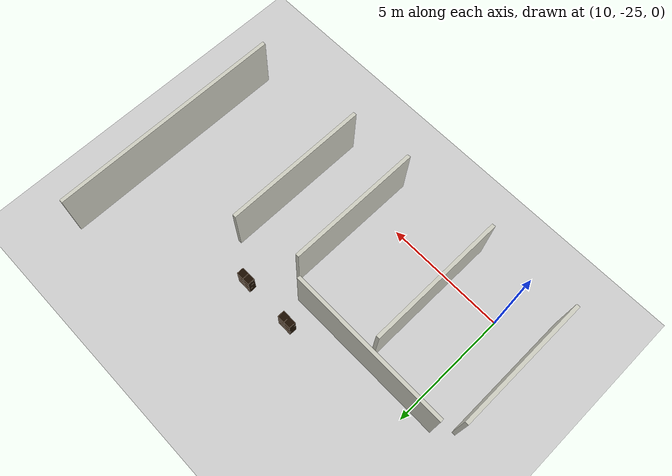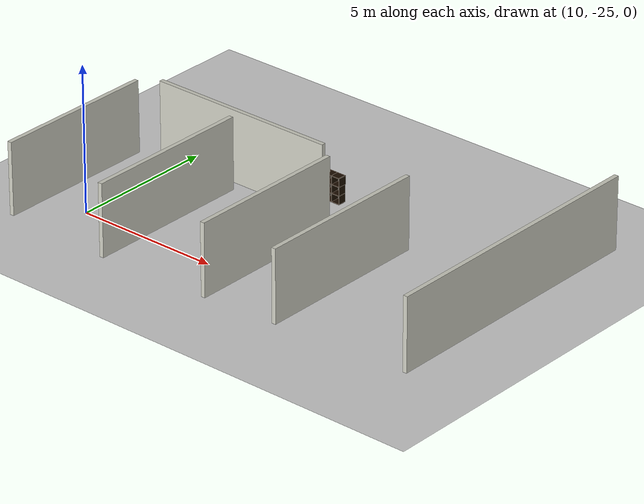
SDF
<sdf version="1.7">
 <world name="default">
  <model name="ground_plane">
   <static>1</static>
   <link name="link">
    <collision name="collision">
     <geometry><plane><normal>0 0 1</normal><size>100 100</size></plane></geometry>
     <surface><friction><ode><mu>100</mu><mu2>50</mu2></ode></friction></surface>
    </collision>
    <visual name="visual">
     <cast_shadows>0</cast_shadows>
     <geometry><plane><normal>0 0 1</normal><size>100 100</size></plane></geometry>
     <material>
      <ambient>1 1 1 1</ambient>
      <diffuse>0.8 0.8 0.8 1</diffuse>
      <specular>0.01 0.01 0.01 1</specular>
     </material>
    </visual>
   </link>
  </model>
  <model name="floorPlan">
   <pose>6.7155 -5.3556 0 0 -0 0</pose>
   <link name="Wall_123">
    <collision name="Wall_123_Collision">
     <geometry><box><size>9.79 0.15 2.5</size></box></geometry>
     <pose>0 0 1.25 0 -0 0</pose>
    </collision>
    <visual name="Wall_123_Visual">
     <pose>0 0 1.25 0 -0 0</pose>
     <geometry><box><size>9.79 0.15 2.5</size></box></geometry>
     <material>
      <script><uri>file://media/materials/scripts/gazebo.material</uri><name>Gazebo/PaintedWall</name></script>
      <ambient>1 1 1 1</ambient>
     </material>
     <meta><layer>0</layer></meta>
    </visual>
    <pose>16.8339 -15.8579 0 0 0 -1.5708</pose>
   </link>
   <link name="Wall_125">
    <collision name="Wall_125_Collision">
     <geometry><box><size>6.04 0.15 2.5</size></box></geometry>
     <pose>0 0 1.25 0 -0 0</pose>
    </collision>
    <visual name="Wall_125_Visual">
     <pose>0 0 1.25 0 -0 0</pose>
     <geometry><box><size>6.04 0.15 2.5</size></box></geometry>
     <material>
      <script><uri>file://media/materials/scripts/gazebo.material</uri><name>Gazebo/PaintedWall</name></script>
      <ambient>1 1 1 1</ambient>
     </material>
     <meta><layer>0</layer></meta>
    </visual>
    <pose>12.1458 -18.0541 0 0 0 -1.5708</pose>
   </link>
   <link name="Wall_229">
    <collision name="Wall_229_Collision">
     <geometry><box><size>5.62 0.15 2.5</size></box></geometry>
     <pose>0 0 1.25 0 -0 0</pose>
    </collision>
    <visual name="Wall_229_Visual">
     <pose>0 0 1.25 0 -0 0</pose>
     <geometry><box><size>5.62 0.15 2.5</size></box></geometry>
     <material>
      <script><uri>file://media/materials/scripts/gazebo.material</uri><name>Gazebo/PaintedWall</name></script>
      <ambient>1 1 1 1</ambient>
     </material>
     <meta><layer>0</layer></meta>
    </visual>
    <pose>1.67781 -18.4351 0 0 0 -1.5708</pose>
   </link>
   <link name="Wall_231">
    <collision name="Wall_231_Collision">
     <geometry><box><size>6.66 0.15 2.5</size></box></geometry>
     <pose>0 0 1.25 0 -0 0</pose>
    </collision>
    <visual name="Wall_231_Visual">
     <pose>0 0 1.25 0 -0 0</pose>
     <geometry><box><size>6.66 0.15 2.5</size></box></geometry>
     <material>
      <script><uri>file://media/materials/scripts/gazebo.material</uri><name>Gazebo/PaintedWall</name></script>
      <ambient>1 1 1 1</ambient>
     </material>
     <meta><layer>0</layer></meta>
    </visual>
    <pose>5.60281 -15.1351 0 0 -0 0</pose>
   </link>
   <link name="Wall_232">
    <collision name="Wall_232_Collision">
     <geometry><box><size>5.62 0.15 2.5</size></box></geometry>
     <pose>0 0 1.25 0 -0 0</pose>
    </collision>
    <visual name="Wall_232_Visual">
     <pose>0 0 1.25 0 -0 0</pose>
     <geometry><box><size>5.62 0.15 2.5</size></box></geometry>
     <material>
      <script><uri>file://media/materials/scripts/gazebo.material</uri><name>Gazebo/PaintedWall</name></script>
      <ambient>1 1 1 1</ambient>
     </material>
     <meta><layer>0</layer></meta>
    </visual>
    <pose>9.52781 -18.4351 0 0 0 -1.5708</pose>
   </link>
   <link name="Wall_265">
    <collision name="Wall_265_Collision">
     <geometry><box><size>5.83 0.15 2.5</size></box></geometry>
     <pose>0 0 1.25 0 -0 0</pose>
    </collision>
    <visual name="Wall_265_Visual">
     <pose>0 0 1.25 0 -0 0</pose>
     <geometry><box><size>5.83 0.15 2.5</size></box></geometry>
     <material>
      <script><uri>file://media/materials/scripts/gazebo.material</uri><name>Gazebo/PaintedWall</name></script>
      <ambient>1 1 1 1</ambient>
     </material>
     <meta><layer>0</layer></meta>
    </visual>
    <pose>5.58226 -18.4924 0 0 0 -1.5708</pose>
   </link>
   <static>1</static>
  </model>
  <model name="6_Cube_StorageE_clone_2">
   <link name="Wall_0">
    <pose>0 0 0.01 0 -0 0</pose>
    <inertial>
     <mass>1.6201</mass>
     <inertia><ixx>0.0119</ixx><iyy>0.0631</iyy><izz>0.0513</izz><ixy>0</ixy><ixz>0</ixz><iyz>0</iyz></inertia>
    </inertial>
    <collision name="Wall_0_Collision"><geometry><box><size>0.616 0.296 0.02</size></box></geometry></collision>
    <visual name="Wall_0_Visual">
     <geometry><box><size>0.616 0.296 0.02</size></box></geometry>
     <material>
      <script><uri>file://media/materials/scripts/gazebo.material</uri><name>Gazebo/Grey</name></script>
      <ambient>0.105882 0.0509804 0 1</ambient>
     </material>
    </visual>
   </link>
   <joint name="0_2" type="fixed">
    <pose>-0.308 0 0 0 -0 0</pose>
    <parent>Wall_2</parent>
    <child>Wall_0</child>
    <axis><xyz>1 0 0</xyz><limit><lower>-1e+16</lower><upper>1e+16</upper></limit></axis>
   </joint>
   <joint name="0_12" type="fixed">
    <parent>Wall_12</parent>
    <child>Wall_0</child>
    <axis><xyz>0 0 1</xyz><limit><lower>-1e+16</lower><upper>1e+16</upper></limit></axis>
   </joint>
   <joint name="0_4" type="fixed">
    <pose>0.308 0 0 0 -0 0</pose>
    <parent>Wall_4</parent>
    <child>Wall_0</child>
    <axis><xyz>1 0 0</xyz><limit><lower>-1e+16</lower><upper>1e+16</upper></limit></axis>
   </joint>
   <link name="Wall_10">
    <pose>0 0 0.61 0 -0 0</pose>
    <inertial>
     <mass>1.6201</mass>
     <inertia><ixx>0.0119</ixx><iyy>0.0631</iyy><izz>0.0513</izz><ixy>0</ixy><ixz>0</ixz><iyz>0</iyz></inertia>
    </inertial>
    <collision name="Wall_10_Collision"><geometry><box><size>0.616 0.296 0.02</size></box></geometry></collision>
    <visual name="Wall_10_Visual">
     <geometry><box><size>0.616 0.296 0.02</size></box></geometry>
     <material>
      <script><uri>file://media/materials/scripts/gazebo.material</uri><name>Gazebo/Grey</name></script>
      <ambient>0.105882 0.0509804 0 1</ambient>
     </material>
    </visual>
   </link>
   <joint name="10_2" type="fixed">
    <pose>-0.308 0 0 0 -0 0</pose>
    <parent>Wall_2</parent>
    <child>Wall_10</child>
    <axis><xyz>1 0 0</xyz><limit><lower>-1e+16</lower><upper>1e+16</upper></limit></axis>
   </joint>
   <joint name="10_12" type="fixed">
    <parent>Wall_12</parent>
    <child>Wall_10</child>
    <axis><xyz>0 0 1</xyz><limit><lower>-1e+16</lower><upper>1e+16</upper></limit></axis>
   </joint>
   <joint name="10_4" type="fixed">
    <pose>0.308 0 0 0 -0 0</pose>
    <parent>Wall_4</parent>
    <child>Wall_10</child>
    <axis><xyz>1 0 0</xyz><limit><lower>-1e+16</lower><upper>1e+16</upper></limit></axis>
   </joint>
   <link name="Wall_12">
    <pose>0 0 0.4575 0 -0 0</pose>
    <inertial>
     <mass>2.4065</mass>
     <inertia><ixx>0.0177</ixx><iyy>0.1855</iyy><izz>0.168</izz><ixy>0</ixy><ixz>0</ixz><iyz>0</iyz></inertia>
    </inertial>
    <collision name="Wall_12_Collision"><geometry><box><size>0.02 0.296 0.915</size></box></geometry></collision>
    <visual name="Wall_12_Visual">
     <geometry><box><size>0.02 0.296 0.915</size></box></geometry>
     <material>
      <script><uri>file://media/materials/scripts/gazebo.material</uri><name>Gazebo/Grey</name></script>
      <ambient>0.105882 0.0509804 0 1</ambient>
     </material>
    </visual>
   </link>
   <link name="Wall_2">
    <pose>-0.298 0 0.4575 0 -0 0</pose>
    <inertial>
     <mass>2.4065</mass>
     <inertia><ixx>0.0177</ixx><iyy>0.1855</iyy><izz>0.168</izz><ixy>0</ixy><ixz>0</ixz><iyz>0</iyz></inertia>
    </inertial>
    <collision name="Wall_2_Collision"><geometry><box><size>0.02 0.296 0.915</size></box></geometry></collision>
    <visual name="Wall_2_Visual">
     <geometry><box><size>0.02 0.296 0.915</size></box></geometry>
     <material>
      <script><uri>file://media/materials/scripts/gazebo.material</uri><name>Gazebo/Grey</name></script>
      <ambient>0.105882 0.0509804 0 1</ambient>
     </material>
    </visual>
   </link>
   <link name="Wall_4">
    <pose>0.298 0 0.4575 0 -0 0</pose>
    <inertial>
     <mass>2.4065</mass>
     <inertia><ixx>0.0177</ixx><iyy>0.1855</iyy><izz>0.168</izz><ixy>0</ixy><ixz>0</ixz><iyz>0</iyz></inertia>
    </inertial>
    <collision name="Wall_4_Collision"><geometry><box><size>0.02 0.296 0.915</size></box></geometry></collision>
    <visual name="Wall_4_Visual">
     <geometry><box><size>0.02 0.296 0.915</size></box></geometry>
     <material>
      <script><uri>file://media/materials/scripts/gazebo.material</uri><name>Gazebo/Grey</name></script>
      <ambient>0.105882 0.0509804 0 1</ambient>
     </material>
    </visual>
   </link>
   <link name="Wall_6">
    <pose>0 0 0.905 0 -0 0</pose>
    <inertial>
     <mass>1.6201</mass>
     <inertia><ixx>0.0119</ixx><iyy>0.0631</iyy><izz>0.0513</izz><ixy>0</ixy><ixz>0</ixz><iyz>0</iyz></inertia>
    </inertial>
    <collision name="Wall_6_Collision"><geometry><box><size>0.616 0.296 0.02</size></box></geometry></collision>
    <visual name="Wall_6_Visual">
     <geometry><box><size>0.616 0.296 0.02</size></box></geometry>
     <material>
      <script><uri>file://media/materials/scripts/gazebo.material</uri><name>Gazebo/Grey</name></script>
      <ambient>0.105882 0.0509804 0 1</ambient>
     </material>
    </visual>
   </link>
   <joint name="6_2" type="fixed">
    <pose>-0.308 0 0 0 -0 0</pose>
    <parent>Wall_2</parent>
    <child>Wall_6</child>
    <axis><xyz>2 0 0</xyz><limit><lower>-1e+16</lower><upper>1e+16</upper></limit></axis>
   </joint>
   <joint name="6_12" type="fixed">
    <parent>Wall_12</parent>
    <child>Wall_6</child>
    <axis><xyz>0 0 1</xyz><limit><lower>-1e+16</lower><upper>1e+16</upper></limit></axis>
   </joint>
   <joint name="6_4" type="fixed">
    <pose>0.308 0 0 0 -0 0</pose>
    <parent>Wall_4</parent>
    <child>Wall_6</child>
    <axis><xyz>1 0 0</xyz><limit><lower>-1e+16</lower><upper>1e+16</upper></limit></axis>
   </joint>
   <link name="Wall_8">
    <pose>0 0 0.305 0 -0 0</pose>
    <inertial>
     <mass>1.6201</mass>
     <inertia><ixx>0.0119</ixx><iyy>0.0631</iyy><izz>0.0513</izz><ixy>0</ixy><ixz>0</ixz><iyz>0</iyz></inertia>
    </inertial>
    <collision name="Wall_8_Collision"><geometry><box><size>0.616 0.296 0.02</size></box></geometry></collision>
    <visual name="Wall_8_Visual">
     <geometry><box><size>0.616 0.296 0.02</size></box></geometry>
     <material>
      <script><uri>file://media/materials/scripts/gazebo.material</uri><name>Gazebo/Grey</name></script>
      <ambient>0.105882 0.0509804 0 1</ambient>
     </material>
    </visual>
   </link>
   <joint name="8_2" type="fixed">
    <pose>-0.308 0 0 0 -0 0</pose>
    <parent>Wall_2</parent>
    <child>Wall_8</child>
    <axis><xyz>1 0 0</xyz><limit><lower>-1e+16</lower><upper>1e+16</upper></limit></axis>
   </joint>
   <joint name="8_12" type="fixed">
    <parent>Wall_12</parent>
    <child>Wall_8</child>
    <axis><xyz>0 0 1</xyz><limit><lower>-1e+16</lower><upper>1e+16</upper></limit></axis>
   </joint>
   <joint name="8_4" type="fixed">
    <pose>0.308 0 0 0 -0 0</pose>
    <parent>Wall_4</parent>
    <child>Wall_8</child>
    <axis><xyz>1 0 0</xyz><limit><lower>-1e+16</lower><upper>1e+16</upper></limit></axis>
   </joint>
   <static>1</static>
   <pose>15.1837 -19.4401 0 0 -0 0</pose>
  </model>
  <model name="6_Cube_StorageE_clone_3">
   <link name="Wall_0">
    <pose>0 0 0.01 0 -0 0</pose>
    <inertial>
     <mass>1.6201</mass>
     <inertia><ixx>0.0119</ixx><iyy>0.0631</iyy><izz>0.0513</izz><ixy>0</ixy><ixz>0</ixz><iyz>0</iyz></inertia>
    </inertial>
    <collision name="Wall_0_Collision"><geometry><box><size>0.616 0.296 0.02</size></box></geometry></collision>
    <visual name="Wall_0_Visual">
     <geometry><box><size>0.616 0.296 0.02</size></box></geometry>
     <material>
      <script><uri>file://media/materials/scripts/gazebo.material</uri><name>Gazebo/Grey</name></script>
      <ambient>0.105882 0.0509804 0 1</ambient>
     </material>
    </visual>
   </link>
   <joint name="0_2" type="fixed">
    <pose>-0.308 0 0 0 -0 0</pose>
    <parent>Wall_2</parent>
    <child>Wall_0</child>
    <axis><xyz>1 0 0</xyz><limit><lower>-1e+16</lower><upper>1e+16</upper></limit></axis>
   </joint>
   <joint name="0_12" type="fixed">
    <parent>Wall_12</parent>
    <child>Wall_0</child>
    <axis><xyz>0 0 1</xyz><limit><lower>-1e+16</lower><upper>1e+16</upper></limit></axis>
   </joint>
   <joint name="0_4" type="fixed">
    <pose>0.308 0 0 0 -0 0</pose>
    <parent>Wall_4</parent>
    <child>Wall_0</child>
    <axis><xyz>1 0 0</xyz><limit><lower>-1e+16</lower><upper>1e+16</upper></limit></axis>
   </joint>
   <link name="Wall_10">
    <pose>0 0 0.61 0 -0 0</pose>
    <inertial>
     <mass>1.6201</mass>
     <inertia><ixx>0.0119</ixx><iyy>0.0631</iyy><izz>0.0513</izz><ixy>0</ixy><ixz>0</ixz><iyz>0</iyz></inertia>
    </inertial>
    <collision name="Wall_10_Collision"><geometry><box><size>0.616 0.296 0.02</size></box></geometry></collision>
    <visual name="Wall_10_Visual">
     <geometry><box><size>0.616 0.296 0.02</size></box></geometry>
     <material>
      <script><uri>file://media/materials/scripts/gazebo.material</uri><name>Gazebo/Grey</name></script>
      <ambient>0.105882 0.0509804 0 1</ambient>
     </material>
    </visual>
   </link>
   <joint name="10_2" type="fixed">
    <pose>-0.308 0 0 0 -0 0</pose>
    <parent>Wall_2</parent>
    <child>Wall_10</child>
    <axis><xyz>1 0 0</xyz><limit><lower>-1e+16</lower><upper>1e+16</upper></limit></axis>
   </joint>
   <joint name="10_12" type="fixed">
    <parent>Wall_12</parent>
    <child>Wall_10</child>
    <axis><xyz>0 0 1</xyz><limit><lower>-1e+16</lower><upper>1e+16</upper></limit></axis>
   </joint>
   <joint name="10_4" type="fixed">
    <pose>0.308 0 0 0 -0 0</pose>
    <parent>Wall_4</parent>
    <child>Wall_10</child>
    <axis><xyz>1 0 0</xyz><limit><lower>-1e+16</lower><upper>1e+16</upper></limit></axis>
   </joint>
   <link name="Wall_12">
    <pose>0 0 0.4575 0 -0 0</pose>
    <inertial>
     <mass>2.4065</mass>
     <inertia><ixx>0.0177</ixx><iyy>0.1855</iyy><izz>0.168</izz><ixy>0</ixy><ixz>0</ixz><iyz>0</iyz></inertia>
    </inertial>
    <collision name="Wall_12_Collision"><geometry><box><size>0.02 0.296 0.915</size></box></geometry></collision>
    <visual name="Wall_12_Visual">
     <geometry><box><size>0.02 0.296 0.915</size></box></geometry>
     <material>
      <script><uri>file://media/materials/scripts/gazebo.material</uri><name>Gazebo/Grey</name></script>
      <ambient>0.105882 0.0509804 0 1</ambient>
     </material>
    </visual>
   </link>
   <link name="Wall_2">
    <pose>-0.298 0 0.4575 0 -0 0</pose>
    <inertial>
     <mass>2.4065</mass>
     <inertia><ixx>0.0177</ixx><iyy>0.1855</iyy><izz>0.168</izz><ixy>0</ixy><ixz>0</ixz><iyz>0</iyz></inertia>
    </inertial>
    <collision name="Wall_2_Collision"><geometry><box><size>0.02 0.296 0.915</size></box></geometry></collision>
    <visual name="Wall_2_Visual">
     <geometry><box><size>0.02 0.296 0.915</size></box></geometry>
     <material>
      <script><uri>file://media/materials/scripts/gazebo.material</uri><name>Gazebo/Grey</name></script>
      <ambient>0.105882 0.0509804 0 1</ambient>
     </material>
    </visual>
   </link>
   <link name="Wall_4">
    <pose>0.298 0 0.4575 0 -0 0</pose>
    <inertial>
     <mass>2.4065</mass>
     <inertia><ixx>0.0177</ixx><iyy>0.1855</iyy><izz>0.168</izz><ixy>0</ixy><ixz>0</ixz><iyz>0</iyz></inertia>
    </inertial>
    <collision name="Wall_4_Collision"><geometry><box><size>0.02 0.296 0.915</size></box></geometry></collision>
    <visual name="Wall_4_Visual">
     <geometry><box><size>0.02 0.296 0.915</size></box></geometry>
     <material>
      <script><uri>file://media/materials/scripts/gazebo.material</uri><name>Gazebo/Grey</name></script>
      <ambient>0.105882 0.0509804 0 1</ambient>
     </material>
    </visual>
   </link>
   <link name="Wall_6">
    <pose>0 0 0.905 0 -0 0</pose>
    <inertial>
     <mass>1.6201</mass>
     <inertia><ixx>0.0119</ixx><iyy>0.0631</iyy><izz>0.0513</izz><ixy>0</ixy><ixz>0</ixz><iyz>0</iyz></inertia>
    </inertial>
    <collision name="Wall_6_Collision"><geometry><box><size>0.616 0.296 0.02</size></box></geometry></collision>
    <visual name="Wall_6_Visual">
     <geometry><box><size>0.616 0.296 0.02</size></box></geometry>
     <material>
      <script><uri>file://media/materials/scripts/gazebo.material</uri><name>Gazebo/Grey</name></script>
      <ambient>0.105882 0.0509804 0 1</ambient>
     </material>
    </visual>
   </link>
   <joint name="6_2" type="fixed">
    <pose>-0.308 0 0 0 -0 0</pose>
    <parent>Wall_2</parent>
    <child>Wall_6</child>
    <axis><xyz>2 0 0</xyz><limit><lower>-1e+16</lower><upper>1e+16</upper></limit></axis>
   </joint>
   <joint name="6_12" type="fixed">
    <parent>Wall_12</parent>
    <child>Wall_6</child>
    <axis><xyz>0 0 1</xyz><limit><lower>-1e+16</lower><upper>1e+16</upper></limit></axis>
   </joint>
   <joint name="6_4" type="fixed">
    <pose>0.308 0 0 0 -0 0</pose>
    <parent>Wall_4</parent>
    <child>Wall_6</child>
    <axis><xyz>1 0 0</xyz><limit><lower>-1e+16</lower><upper>1e+16</upper></limit></axis>
   </joint>
   <link name="Wall_8">
    <pose>0 0 0.305 0 -0 0</pose>
    <inertial>
     <mass>1.6201</mass>
     <inertia><ixx>0.0119</ixx><iyy>0.0631</iyy><izz>0.0513</izz><ixy>0</ixy><ixz>0</ixz><iyz>0</iyz></inertia>
    </inertial>
    <collision name="Wall_8_Collision"><geometry><box><size>0.616 0.296 0.02</size></box></geometry></collision>
    <visual name="Wall_8_Visual">
     <geometry><box><size>0.616 0.296 0.02</size></box></geometry>
     <material>
      <script><uri>file://media/materials/scripts/gazebo.material</uri><name>Gazebo/Grey</name></script>
      <ambient>0.105882 0.0509804 0 1</ambient>
     </material>
    </visual>
   </link>
   <joint name="8_2" type="fixed">
    <pose>-0.308 0 0 0 -0 0</pose>
    <parent>Wall_2</parent>
    <child>Wall_8</child>
    <axis><xyz>1 0 0</xyz><limit><lower>-1e+16</lower><upper>1e+16</upper></limit></axis>
   </joint>
   <joint name="8_12" type="fixed">
    <parent>Wall_12</parent>
    <child>Wall_8</child>
    <axis><xyz>0 0 1</xyz><limit><lower>-1e+16</lower><upper>1e+16</upper></limit></axis>
   </joint>
   <joint name="8_4" type="fixed">
    <pose>0.308 0 0 0 -0 0</pose>
    <parent>Wall_4</parent>
    <child>Wall_8</child>
    <axis><xyz>1 0 0</xyz><limit><lower>-1e+16</lower><upper>1e+16</upper></limit></axis>
   </joint>
   <static>1</static>
   <pose>17.3968 -19.4701 0 0 -0 0</pose>
  </model>
 </world>
</sdf>
